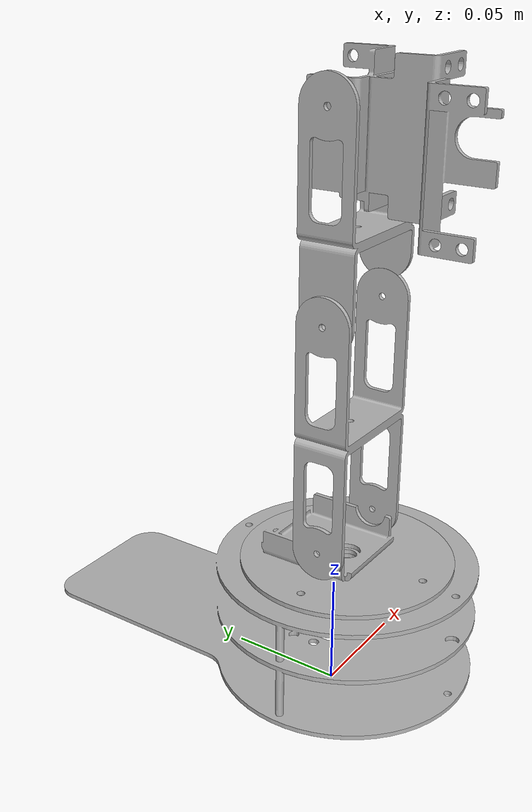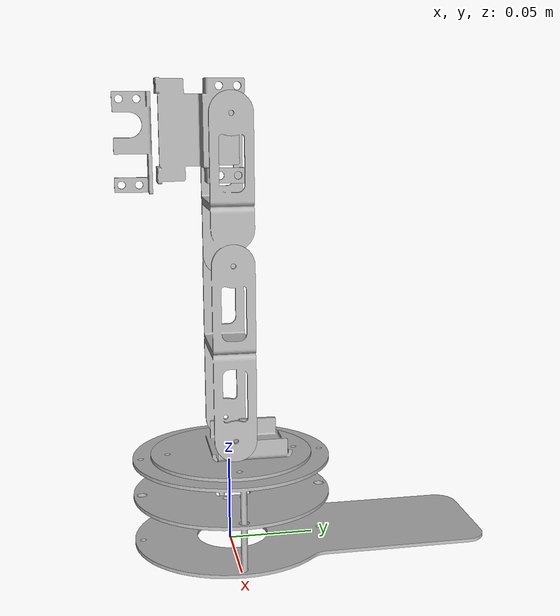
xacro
<?xml version="1.0" ?>
<robot name="new" xmlns:xacro="http://www.ros.org/wiki/xacro">

<xacro:include filename="$(find new_description)/urdf/materials.xacro" />
<xacro:include filename="$(find new_description)/urdf/new.trans" />
<xacro:include filename="$(find new_description)/urdf/new.gazebo" />
<link name="base_link">
  <inertial>
    <origin xyz="0.010460711649933466 0.01886603645849298 0.027982820526074967" rpy="0 0 0"/>
    <mass value="0.07170880112327713"/>
    <inertia ixx="0.000203" iyy="9.1e-05" izz="0.00023" ixy="0.0" iyz="3e-05" ixz="-0.0"/>
  </inertial>
  <visual>
    <origin xyz="0 0 0" rpy="0 0 0"/>
    <geometry>
      <mesh filename="package://new_description/meshes/base_link.stl" scale="0.001 0.001 0.001"/>
    </geometry>
    <material name="silver"/>
  </visual>
  <collision>
    <origin xyz="0 0 0" rpy="0 0 0"/>
    <geometry>
      <mesh filename="package://new_description/meshes/base_link.stl" scale="0.001 0.001 0.001"/>
    </geometry>
  </collision>
</link>

<link name="disk_1__1__1">
  <inertial>
    <origin xyz="-1.8469070289487896e-05 0.003000740186341398 0.0020087032548279787" rpy="0 0 0"/>
    <mass value="0.018753547609885984"/>
    <inertia ixx="9e-06" iyy="9e-06" izz="1.8e-05" ixy="-0.0" iyz="-0.0" ixz="-0.0"/>
  </inertial>
  <visual>
    <origin xyz="-0.01025 -0.0 -0.057" rpy="0 0 0"/>
    <geometry>
      <mesh filename="package://new_description/meshes/disk_1__1__1.stl" scale="0.001 0.001 0.001"/>
    </geometry>
    <material name="silver"/>
  </visual>
  <collision>
    <origin xyz="-0.01025 -0.0 -0.057" rpy="0 0 0"/>
    <geometry>
      <mesh filename="package://new_description/meshes/disk_1__1__1.stl" scale="0.001 0.001 0.001"/>
    </geometry>
  </collision>
</link>

<link name="bracket_1_1">
  <inertial>
    <origin xyz="-0.022499999999981382 1.0769642151704974e-14 0.04999999999999327" rpy="0 0 0"/>
    <mass value="0.012131147003635503"/>
    <inertia ixx="1.2e-05" iyy="1.6e-05" izz="6e-06" ixy="0.0" iyz="-0.0" ixz="-0.0"/>
  </inertial>
  <visual>
    <origin xyz="-0.03175 -0.0 -0.0721" rpy="0 0 0"/>
    <geometry>
      <mesh filename="package://new_description/meshes/bracket_1_1.stl" scale="0.001 0.001 0.001"/>
    </geometry>
    <material name="silver"/>
  </visual>
  <collision>
    <origin xyz="-0.03175 -0.0 -0.0721" rpy="0 0 0"/>
    <geometry>
      <mesh filename="package://new_description/meshes/bracket_1_1.stl" scale="0.001 0.001 0.001"/>
    </geometry>
  </collision>
</link>

<link name="bracket_2_1">
  <inertial>
    <origin xyz="0.0208590983805617 1.0906969799556407e-14 0.039186198529483324" rpy="0 0 0"/>
    <mass value="0.010963645857100756"/>
    <inertia ixx="7e-06" iyy="1.1e-05" izz="5e-06" ixy="-0.0" iyz="0.0" ixz="-1e-06"/>
  </inertial>
  <visual>
    <origin xyz="0.01325 -0.0 -0.1721" rpy="0 0 0"/>
    <geometry>
      <mesh filename="package://new_description/meshes/bracket_2_1.stl" scale="0.001 0.001 0.001"/>
    </geometry>
    <material name="silver"/>
  </visual>
  <collision>
    <origin xyz="0.01325 -0.0 -0.1721" rpy="0 0 0"/>
    <geometry>
      <mesh filename="package://new_description/meshes/bracket_2_1.stl" scale="0.001 0.001 0.001"/>
    </geometry>
  </collision>
</link>

<link name="bracket_3_1">
  <inertial>
    <origin xyz="-0.046977954320404865 0.2403799015410355 -0.022000000000022557" rpy="0 0 0"/>
    <mass value="0.009166586722862597"/>
    <inertia ixx="3e-06" iyy="3e-06" izz="2e-06" ixy="0.0" iyz="0.0" ixz="-0.0"/>
  </inertial>
  <visual>
    <origin xyz="-0.045 0.2541 -0.2661" rpy="0 0 0"/>
    <geometry>
      <mesh filename="package://new_description/meshes/bracket_3_1.stl" scale="0.001 0.001 0.001"/>
    </geometry>
    <material name="silver"/>
  </visual>
  <collision>
    <origin xyz="-0.045 0.2541 -0.2661" rpy="0 0 0"/>
    <geometry>
      <mesh filename="package://new_description/meshes/bracket_3_1.stl" scale="0.001 0.001 0.001"/>
    </geometry>
  </collision>
</link>

<link name="bracket_4_1">
  <inertial>
    <origin xyz="0.03482536914771539 -0.0626154338078977 -0.26984132393513666" rpy="0 0 0"/>
    <mass value="0.0027468945554478437"/>
    <inertia ixx="1e-06" iyy="1e-06" izz="0.0" ixy="-0.0" iyz="0.0" ixz="-0.0"/>
  </inertial>
  <visual>
    <origin xyz="0.04735 -0.01755 -0.5082" rpy="0 0 0"/>
    <geometry>
      <mesh filename="package://new_description/meshes/bracket_4_1.stl" scale="0.001 0.001 0.001"/>
    </geometry>
    <material name="silver"/>
  </visual>
  <collision>
    <origin xyz="0.04735 -0.01755 -0.5082" rpy="0 0 0"/>
    <geometry>
      <mesh filename="package://new_description/meshes/bracket_4_1.stl" scale="0.001 0.001 0.001"/>
    </geometry>
  </collision>
</link>

<joint name="Revolute 1" type="continuous">
  <origin xyz="0.01025 0.0 0.057" rpy="0 0 0"/>
  <parent link="base_link"/>
  <child link="disk_1__1__1"/>
  <axis xyz="0.0 0.0 1.0"/>
</joint>

<joint name="Revolute 2" type="continuous">
  <origin xyz="0.0215 0.0 0.0151" rpy="0 0 0"/>
  <parent link="disk_1__1__1"/>
  <child link="bracket_1_1"/>
  <axis xyz="-1.0 -0.0 0.0"/>
</joint>

<joint name="Revolute 3" type="continuous">
  <origin xyz="-0.045 0.0 0.1" rpy="0 0 0"/>
  <parent link="bracket_1_1"/>
  <child link="bracket_2_1"/>
  <axis xyz="1.0 -0.0 -0.0"/>
</joint>

<joint name="Revolute 5" type="continuous">
  <origin xyz="0.05825 -0.2541 0.094" rpy="0 0 0"/>
  <parent link="bracket_2_1"/>
  <child link="bracket_3_1"/>
  <axis xyz="1.0 -0.0 -0.0"/>
</joint>

<joint name="Revolute 6" type="continuous">
  <origin xyz="-0.09235 0.27165 0.2421" rpy="0 0 0"/>
  <parent link="bracket_3_1"/>
  <child link="bracket_4_1"/>
  <axis xyz="-0.0 -1.0 0.0"/>
</joint>

</robot>

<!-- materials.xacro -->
<robot name="new" xmlns:xacro="http://www.ros.org/wiki/xacro" >

<material name="silver">
  <color rgba="0.700 0.700 0.700 1.000"/>
</material>

</robot>

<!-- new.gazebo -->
<robot name="new" xmlns:xacro="http://www.ros.org/wiki/xacro" >

<xacro:property name="body_color" value="Gazebo/Silver" />

<gazebo>
  <plugin name="control" filename="libgazebo_ros_control.so"/>
</gazebo>
<gazebo reference="base_link">
  <material>${body_color}</material>
  <mu1>0.2</mu1>
  <mu2>0.2</mu2>
  <selfCollide>true</selfCollide>
  <gravity>true</gravity>
</gazebo>

<gazebo reference="disk_1__1__1">
  <material>${body_color}</material>
  <mu1>0.2</mu1>
  <mu2>0.2</mu2>
  <selfCollide>true</selfCollide>
</gazebo>

<gazebo reference="bracket_1_1">
  <material>${body_color}</material>
  <mu1>0.2</mu1>
  <mu2>0.2</mu2>
  <selfCollide>true</selfCollide>
</gazebo>

<gazebo reference="bracket_2_1">
  <material>${body_color}</material>
  <mu1>0.2</mu1>
  <mu2>0.2</mu2>
  <selfCollide>true</selfCollide>
</gazebo>

<gazebo reference="bracket_3_1">
  <material>${body_color}</material>
  <mu1>0.2</mu1>
  <mu2>0.2</mu2>
  <selfCollide>true</selfCollide>
</gazebo>

<gazebo reference="bracket_4_1">
  <material>${body_color}</material>
  <mu1>0.2</mu1>
  <mu2>0.2</mu2>
  <selfCollide>true</selfCollide>
</gazebo>

</robot>
